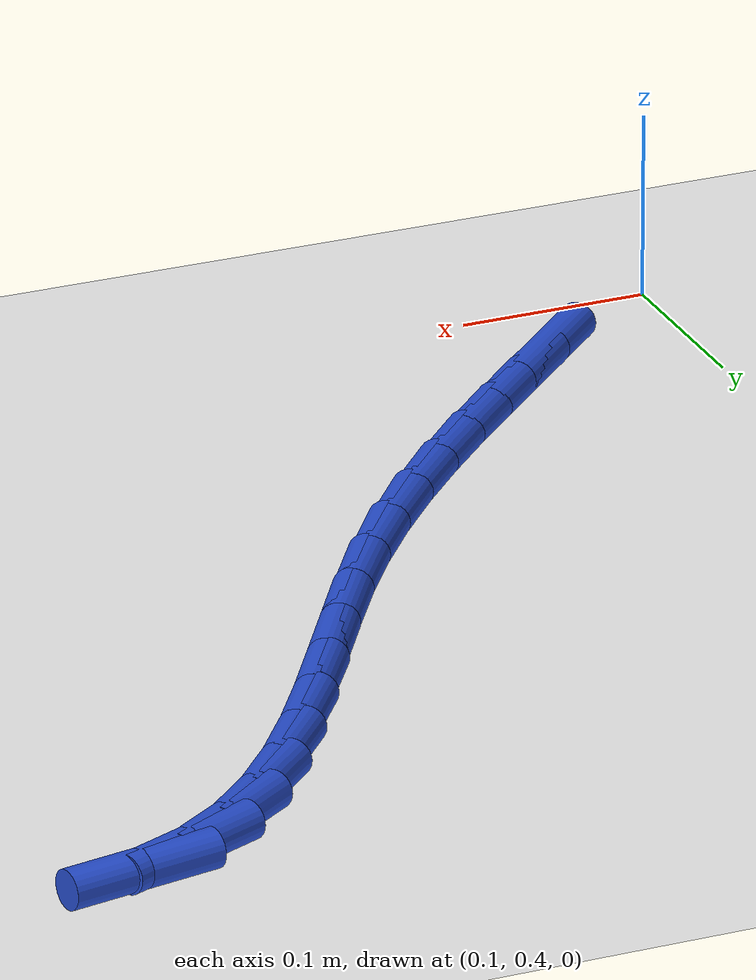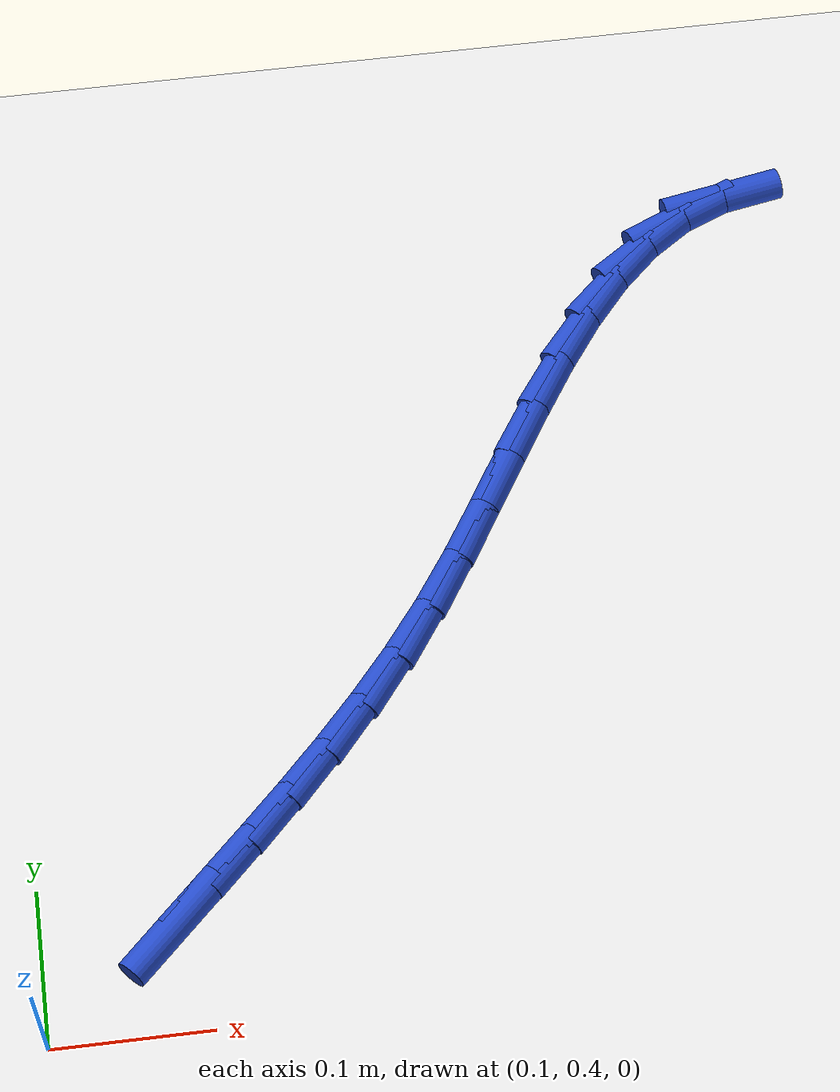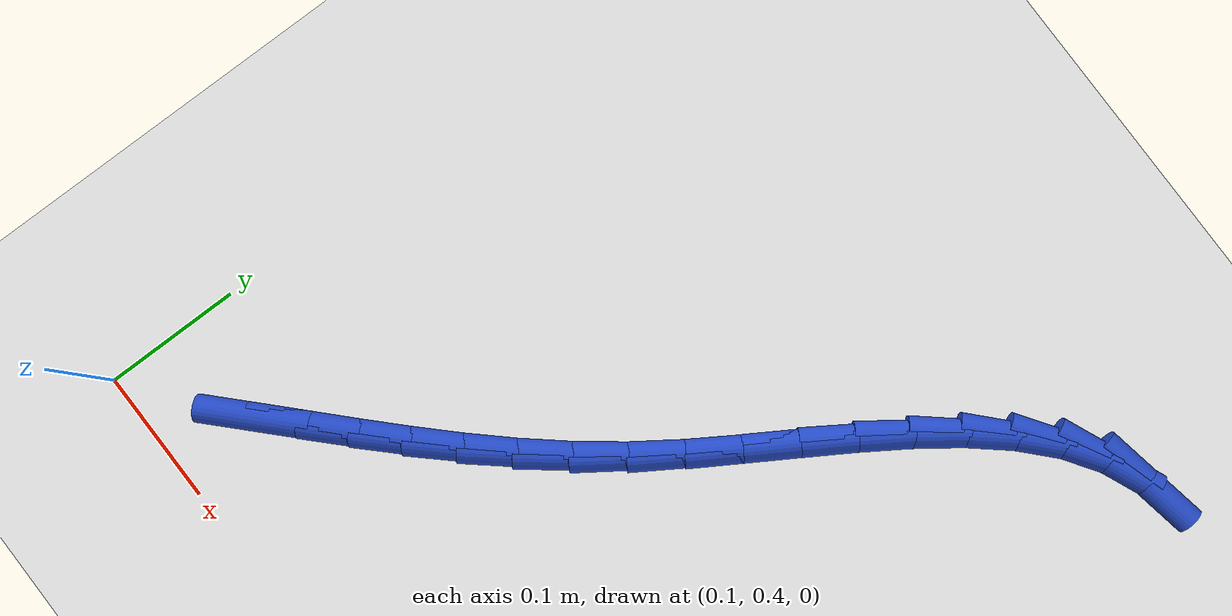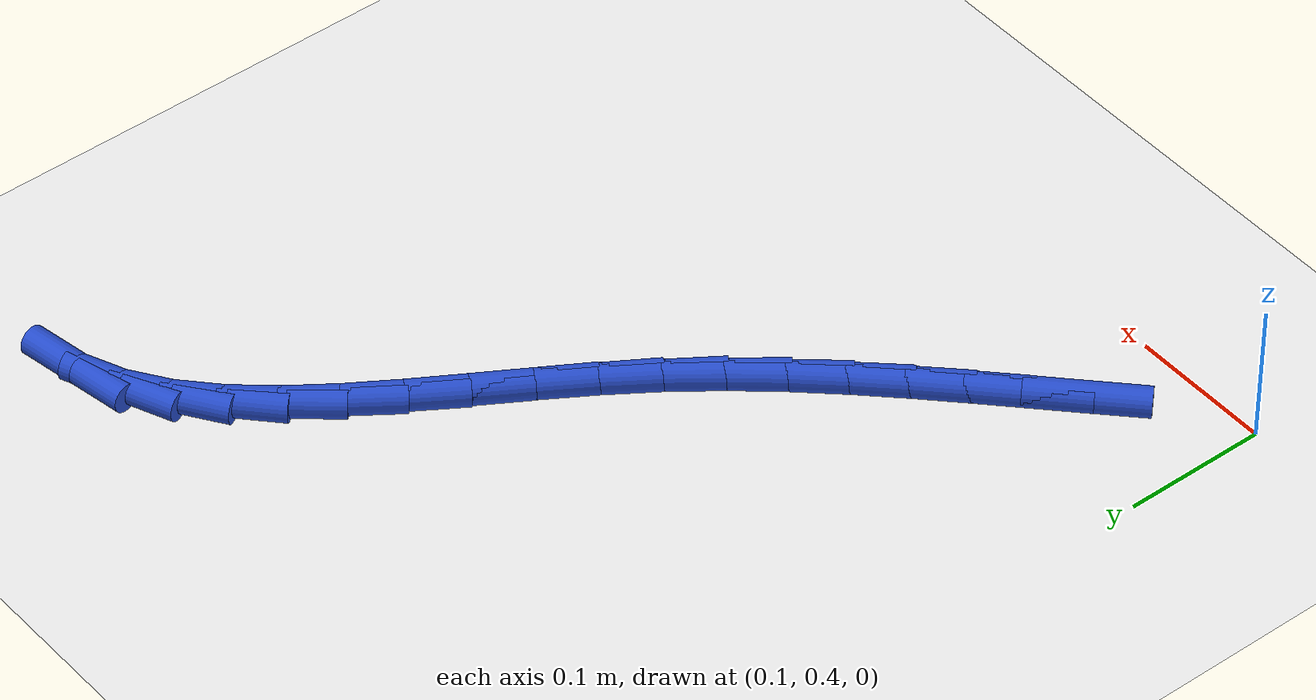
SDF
<sdf version="1.6">
 <world name="default">
  <model name="ground_plane">
   <static>1</static>
   <link name="link">
    <collision name="collision">
     <geometry><plane><normal>0 0 1</normal><size>100 100</size></plane></geometry>
     <surface><friction><ode><mu>100</mu><mu2>50</mu2></ode></friction></surface>
    </collision>
    <visual name="visual">
     <cast_shadows>0</cast_shadows>
     <geometry><plane><normal>0 0 1</normal><size>100 100</size></plane></geometry>
     <material>
      <script><uri>file://media/materials/scripts/gazebo.material</uri><name>Gazebo/WhiteGlow</name></script>
     </material>
    </visual>
   </link>
  </model>
  <model name="line">
   <link name="link_15">
    <pose>0.1814626493172087 0.4650080337651555 0.01 0 1.57 0.7708533505037601</pose>
    <collision name="collision">
     <geometry><cylinder><radius>0.01</radius><length>0.08</length></cylinder></geometry>
    </collision>
    <visual name="visual">
     <material>
      <script><name>Gazebo/Blue</name><uri>file://media/materials/scripts/gazebo.material</uri></script>
     </material>
     <geometry><cylinder><radius>0.01</radius><length>0.08</length></cylinder></geometry>
    </visual>
   </link>
   <link name="link_16">
    <pose>0.2069097206863861 0.48972542101382077 0.01 0 1.57 0.7693073143122566</pose>
    <collision name="collision">
     <geometry><cylinder><radius>0.01</radius><length>0.08</length></cylinder></geometry>
    </collision>
    <visual name="visual">
     <material>
      <script><name>Gazebo/Blue</name><uri>file://media/materials/scripts/gazebo.material</uri></script>
     </material>
     <geometry><cylinder><radius>0.01</radius><length>0.08</length></cylinder></geometry>
    </visual>
   </link>
   <link name="link_17">
    <pose>0.23277139940318298 0.5147679373116848 0.01 0 1.57 0.7784961566398637</pose>
    <collision name="collision">
     <geometry><cylinder><radius>0.01</radius><length>0.08</length></cylinder></geometry>
    </collision>
    <visual name="visual">
     <material>
      <script><name>Gazebo/Blue</name><uri>file://media/materials/scripts/gazebo.material</uri></script>
     </material>
     <geometry><cylinder><radius>0.01</radius><length>0.08</length></cylinder></geometry>
    </visual>
   </link>
   <link name="link_18">
    <pose>0.2587567387872048 0.5403970278943124 0.01 0 1.57 0.7980001288526365</pose>
    <collision name="collision">
     <geometry><cylinder><radius>0.01</radius><length>0.08</length></cylinder></geometry>
    </collision>
    <visual name="visual">
     <material>
      <script><name>Gazebo/Blue</name><uri>file://media/materials/scripts/gazebo.material</uri></script>
     </material>
     <geometry><cylinder><radius>0.01</radius><length>0.08</length></cylinder></geometry>
    </visual>
   </link>
   <link name="link_19">
    <pose>0.2845747921580574 0.5668741379972688 0.01 0 1.57 0.8274301596720719</pose>
    <collision name="collision">
     <geometry><cylinder><radius>0.01</radius><length>0.08</length></cylinder></geometry>
    </collision>
    <visual name="visual">
     <material>
      <script><name>Gazebo/Blue</name><uri>file://media/materials/scripts/gazebo.material</uri></script>
     </material>
     <geometry><cylinder><radius>0.01</radius><length>0.08</length></cylinder></geometry>
    </visual>
   </link>
   <link name="link_20">
    <pose>0.3099346128353465 0.5944607128561189 0.01 0 1.57 0.866366838404875</pose>
    <collision name="collision">
     <geometry><cylinder><radius>0.01</radius><length>0.08</length></cylinder></geometry>
    </collision>
    <visual name="visual">
     <material>
      <script><name>Gazebo/Blue</name><uri>file://media/materials/scripts/gazebo.material</uri></script>
     </material>
     <geometry><cylinder><radius>0.01</radius><length>0.08</length></cylinder></geometry>
    </visual>
   </link>
   <link name="link_21">
    <pose>0.3345452541386777 0.6234181977064275 0.01 0 1.57 0.9142823876673153</pose>
    <collision name="collision">
     <geometry><cylinder><radius>0.01</radius><length>0.08</length></cylinder></geometry>
    </collision>
    <visual name="visual">
     <material>
      <script><name>Gazebo/Blue</name><uri>file://media/materials/scripts/gazebo.material</uri></script>
     </material>
     <geometry><cylinder><radius>0.01</radius><length>0.08</length></cylinder></geometry>
    </visual>
   </link>
   <link name="link_22">
    <pose>0.3581157693876568 0.6540080377837598 0.01 0 1.57 0.9670866839030043</pose>
    <collision name="collision">
     <geometry><cylinder><radius>0.01</radius><length>0.08</length></cylinder></geometry>
    </collision>
    <visual name="visual">
     <material>
      <script><name>Gazebo/Blue</name><uri>file://media/materials/scripts/gazebo.material</uri></script>
     </material>
     <geometry><cylinder><radius>0.01</radius><length>0.08</length></cylinder></geometry>
    </visual>
   </link>
   <link name="link_23">
    <pose>0.3804327791958674 0.6863704502758111 0.01 0 1.57 1.0047887589611968</pose>
    <collision name="collision">
     <geometry><cylinder><radius>0.01</radius><length>0.08</length></cylinder></geometry>
    </collision>
    <visual name="visual">
     <material>
      <script><name>Gazebo/Blue</name><uri>file://media/materials/scripts/gazebo.material</uri></script>
     </material>
     <geometry><cylinder><radius>0.01</radius><length>0.08</length></cylinder></geometry>
    </visual>
   </link>
   <link name="link_24">
    <pose>0.4017478536597574 0.7199189940678494 0.01 0 1.57 1.0215269439173364</pose>
    <collision name="collision">
     <geometry><cylinder><radius>0.01</radius><length>0.08</length></cylinder></geometry>
    </collision>
    <visual name="visual">
     <material>
      <script><name>Gazebo/Blue</name><uri>file://media/materials/scripts/gazebo.material</uri></script>
     </material>
     <geometry><cylinder><radius>0.01</radius><length>0.08</length></cylinder></geometry>
    </visual>
   </link>
   <link name="link_25">
    <pose>0.4224850214187674 0.7537976967590401 0.01 0 1.57 1.0178594747072323</pose>
    <collision name="collision">
     <geometry><cylinder><radius>0.01</radius><length>0.08</length></cylinder></geometry>
    </collision>
    <visual name="visual">
     <material>
      <script><name>Gazebo/Blue</name><uri>file://media/materials/scripts/gazebo.material</uri></script>
     </material>
     <geometry><cylinder><radius>0.01</radius><length>0.08</length></cylinder></geometry>
    </visual>
   </link>
   <link name="link_26">
    <pose>0.44306859448594665 0.7871501430707885 0.01 0 1.57 0.9927970162421363</pose>
    <collision name="collision">
     <geometry><cylinder><radius>0.01</radius><length>0.08</length></cylinder></geometry>
    </collision>
    <visual name="visual">
     <material>
      <script><name>Gazebo/Blue</name><uri>file://media/materials/scripts/gazebo.material</uri></script>
     </material>
     <geometry><cylinder><radius>0.01</radius><length>0.08</length></cylinder></geometry>
    </visual>
   </link>
   <link name="link_27">
    <pose>0.4639228848743438 0.8191199177244993 0.01 0 1.57 0.9436078346301174</pose>
    <collision name="collision">
     <geometry><cylinder><radius>0.01</radius><length>0.08</length></cylinder></geometry>
    </collision>
    <visual name="visual">
     <material>
      <script><name>Gazebo/Blue</name><uri>file://media/materials/scripts/gazebo.material</uri></script>
     </material>
     <geometry><cylinder><radius>0.01</radius><length>0.08</length></cylinder></geometry>
    </visual>
   </link>
   <link name="link_28">
    <pose>0.4854722045970078 0.848850605441578 0.01 0 1.57 0.8656758754591497</pose>
    <collision name="collision">
     <geometry><cylinder><radius>0.01</radius><length>0.08</length></cylinder></geometry>
    </collision>
    <visual name="visual">
     <material>
      <script><name>Gazebo/Blue</name><uri>file://media/materials/scripts/gazebo.material</uri></script>
     </material>
     <geometry><cylinder><radius>0.01</radius><length>0.08</length></cylinder></geometry>
    </visual>
   </link>
   <link name="link_29">
    <pose>0.5081408656669879 0.8754857909434296 0.01 0 1.57 0.7528043701032412</pose>
    <collision name="collision">
     <geometry><cylinder><radius>0.01</radius><length>0.08</length></cylinder></geometry>
    </collision>
    <visual name="visual">
     <material>
      <script><name>Gazebo/Blue</name><uri>file://media/materials/scripts/gazebo.material</uri></script>
     </material>
     <geometry><cylinder><radius>0.01</radius><length>0.08</length></cylinder></geometry>
    </visual>
   </link>
   <link name="link_30">
    <pose>0.5323531800973331 0.8981690589514598 0.01 0 1.57 0.5990638222572501</pose>
    <collision name="collision">
     <geometry><cylinder><radius>0.01</radius><length>0.08</length></cylinder></geometry>
    </collision>
    <visual name="visual">
     <material>
      <script><name>Gazebo/Blue</name><uri>file://media/materials/scripts/gazebo.material</uri></script>
     </material>
     <geometry><cylinder><radius>0.01</radius><length>0.08</length></cylinder></geometry>
    </visual>
   </link>
   <link name="link_31">
    <pose>0.5585334599010925 0.9160439941870733 0.01 0 1.57 0.40385069944111107</pose>
    <collision name="collision">
     <geometry><cylinder><radius>0.01</radius><length>0.08</length></cylinder></geometry>
    </collision>
    <visual name="visual">
     <material>
      <script><name>Gazebo/Blue</name><uri>file://media/materials/scripts/gazebo.material</uri></script>
     </material>
     <geometry><cylinder><radius>0.01</radius><length>0.08</length></cylinder></geometry>
    </visual>
   </link>
   <link name="link_32">
    <pose>0.5871060170913148 0.9282541813716751 0.01 0 1.57 0.18158814374336443</pose>
    <collision name="collision">
     <geometry><cylinder><radius>0.01</radius><length>0.08</length></cylinder></geometry>
    </collision>
    <visual name="visual">
     <material>
      <script><name>Gazebo/Blue</name><uri>file://media/materials/scripts/gazebo.material</uri></script>
     </material>
     <geometry><cylinder><radius>0.01</radius><length>0.08</length></cylinder></geometry>
    </visual>
   </link>
  </model>
 </world>
</sdf>
